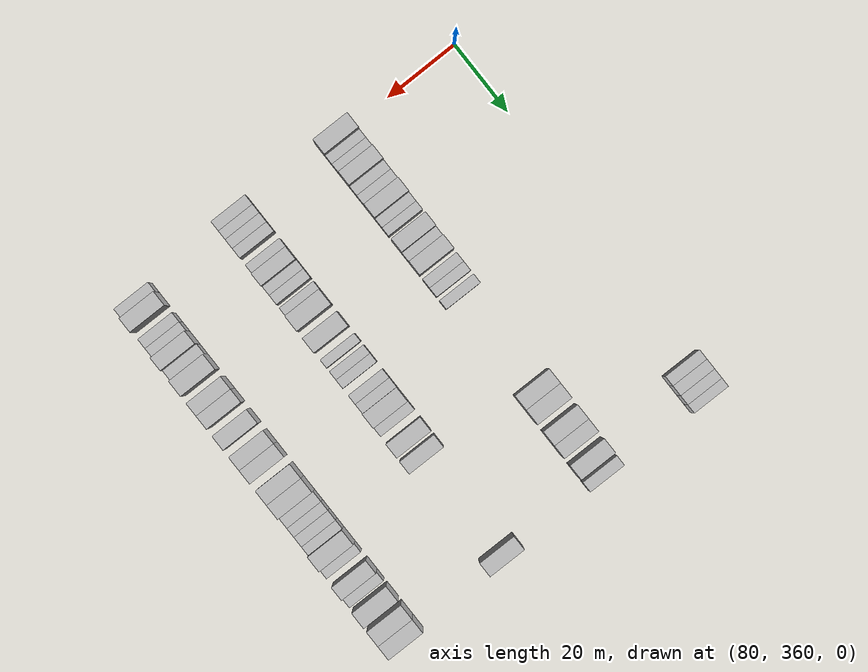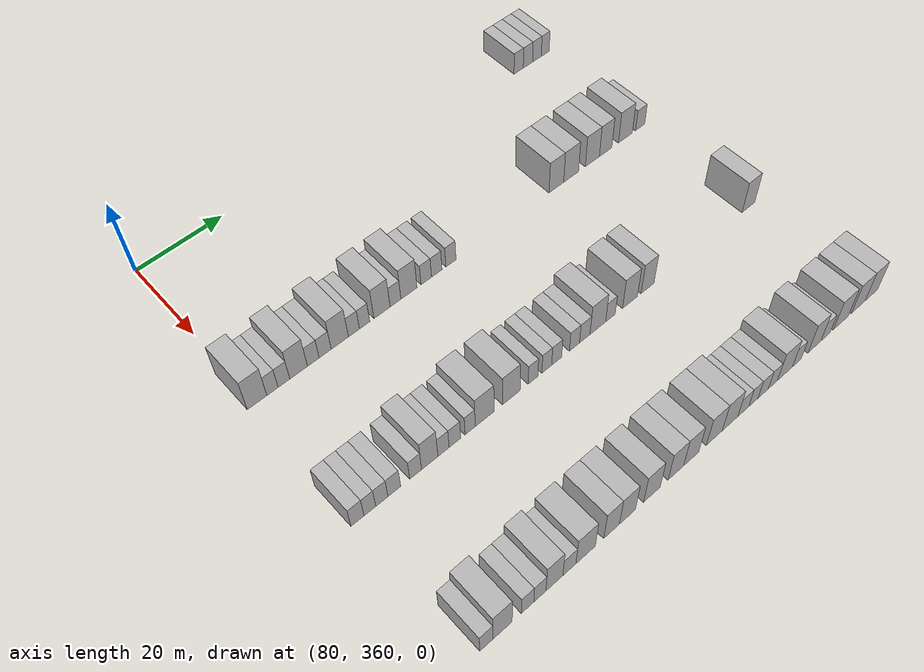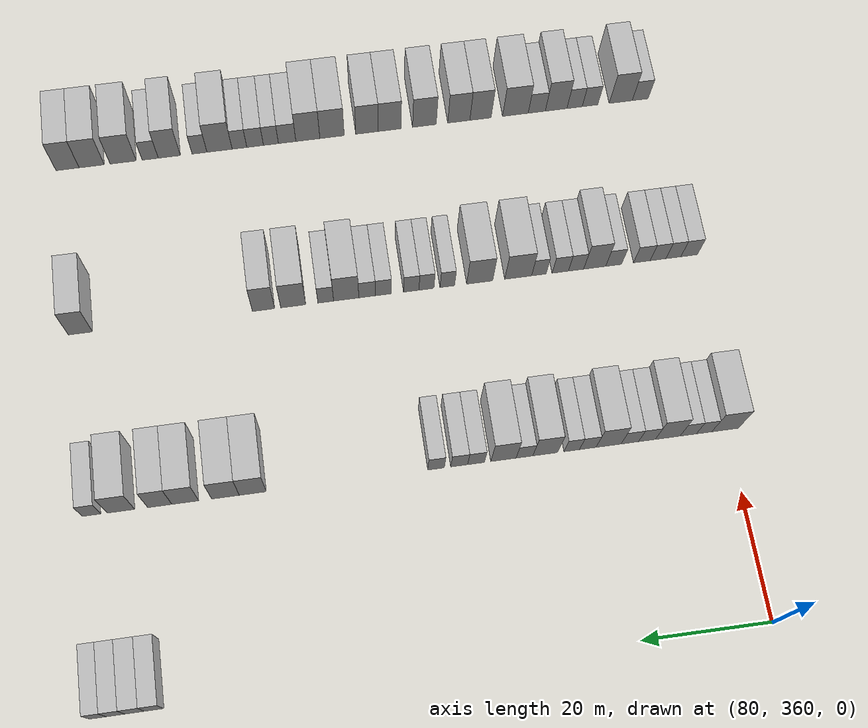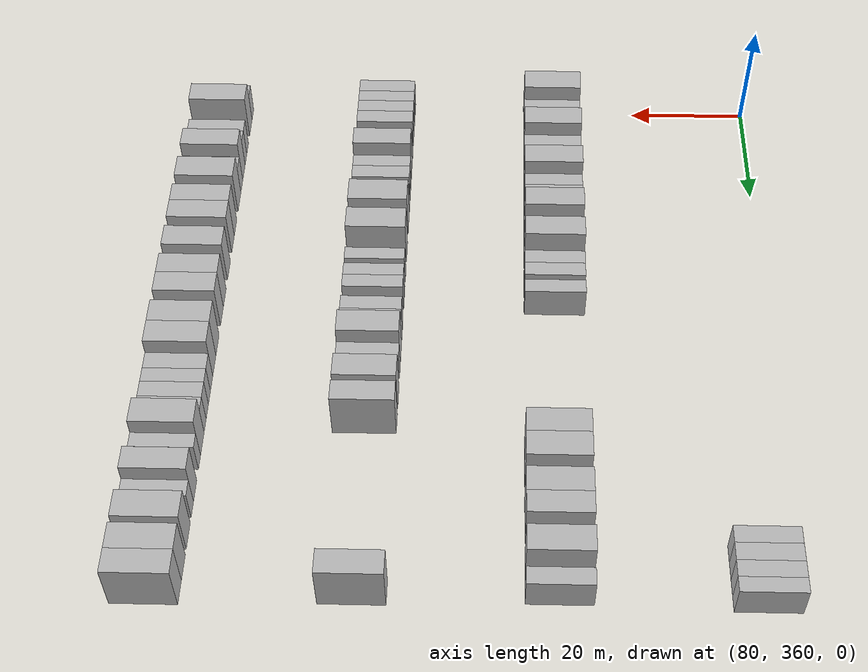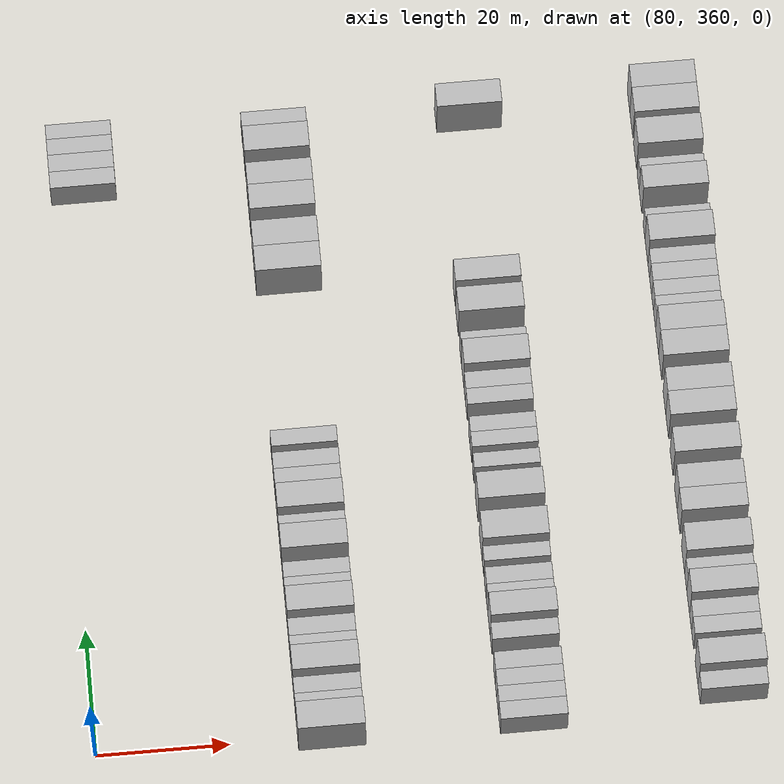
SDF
<sdf version="1.6">
 <world name="default">
  <model name="building_671">
   <static>1</static>
   <pose>85.0000 452.0973 0 0.000000 0.000000 0.000000</pose>
   <link name="link">
    <pose>0 0 3.00 0 0 0</pose>
    <collision name="collision"><geometry><box><size>10.0000 2.7850 6.0000</size></box></geometry></collision>
    <visual name="visual">
     <cast_shadows>0</cast_shadows>
     <geometry><box><size>10.0000 2.7850 6.0000</size></box></geometry>
     <material>
      <script>
       <uri>model://HANNAS_wall/materials/scripts</uri>
       <uri>model://HANNAS_wall/materials/textures</uri>
       <name>vrc/HANNAS_wall</name>
      </script>
     </material>
    </visual>
   </link>
  </model>
  <model name="building_672">
   <static>1</static>
   <pose>85.0000 454.9210 0 0.000000 0.000000 0.000000</pose>
   <link name="link">
    <pose>0 0 3.00 0 0 0</pose>
    <collision name="collision"><geometry><box><size>10.0000 2.8624 6.0000</size></box></geometry></collision>
    <visual name="visual">
     <cast_shadows>0</cast_shadows>
     <geometry><box><size>10.0000 2.8624 6.0000</size></box></geometry>
     <material>
      <script>
       <uri>model://HANNAS_wall/materials/scripts</uri>
       <uri>model://HANNAS_wall/materials/textures</uri>
       <name>vrc/HANNAS_wall</name>
      </script>
     </material>
    </visual>
   </link>
  </model>
  <model name="building_673">
   <static>1</static>
   <pose>85.0000 457.6972 0 0.000000 0.000000 0.000000</pose>
   <link name="link">
    <pose>0 0 3.00 0 0 0</pose>
    <collision name="collision"><geometry><box><size>10.0000 2.6900 6.0000</size></box></geometry></collision>
    <visual name="visual">
     <cast_shadows>0</cast_shadows>
     <geometry><box><size>10.0000 2.6900 6.0000</size></box></geometry>
     <material>
      <script>
       <uri>model://HANNAS_wall/materials/scripts</uri>
       <uri>model://HANNAS_wall/materials/textures</uri>
       <name>vrc/HANNAS_wall</name>
      </script>
     </material>
    </visual>
   </link>
  </model>
  <model name="building_674">
   <static>1</static>
   <pose>85.0000 460.2650 0 0.000000 0.000000 0.000000</pose>
   <link name="link">
    <pose>0 0 3.00 0 0 0</pose>
    <collision name="collision"><geometry><box><size>10.0000 2.4455 6.0000</size></box></geometry></collision>
    <visual name="visual">
     <cast_shadows>0</cast_shadows>
     <geometry><box><size>10.0000 2.4455 6.0000</size></box></geometry>
     <material>
      <script>
       <uri>model://HANNAS_wall/materials/scripts</uri>
       <uri>model://HANNAS_wall/materials/textures</uri>
       <name>vrc/HANNAS_wall</name>
      </script>
     </material>
    </visual>
   </link>
  </model>
  <model name="building_886">
   <static>1</static>
   <pose>115.0000 360.2453 0 0.000000 0.000000 0.000000</pose>
   <link name="link">
    <pose>0 0 4.50 0 0 0</pose>
    <collision name="collision"><geometry><box><size>10.0000 4.2825 9.0000</size></box></geometry></collision>
    <visual name="visual">
     <cast_shadows>0</cast_shadows>
     <geometry><box><size>10.0000 4.2825 9.0000</size></box></geometry>
     <material>
      <script>
       <uri>model://HANNAS_wall/materials/scripts</uri>
       <uri>model://HANNAS_wall/materials/textures</uri>
       <name>vrc/HANNAS_wall</name>
      </script>
     </material>
    </visual>
   </link>
  </model>
  <model name="building_887">
   <static>1</static>
   <pose>115.0000 363.6240 0 0.000000 0.000000 0.000000</pose>
   <link name="link">
    <pose>0 0 3.00 0 0 0</pose>
    <collision name="collision"><geometry><box><size>10.0000 2.4748 6.0000</size></box></geometry></collision>
    <visual name="visual">
     <cast_shadows>0</cast_shadows>
     <geometry><box><size>10.0000 2.4748 6.0000</size></box></geometry>
     <material>
      <script>
       <uri>model://HANNAS_wall/materials/scripts</uri>
       <uri>model://HANNAS_wall/materials/textures</uri>
       <name>vrc/HANNAS_wall</name>
      </script>
     </material>
    </visual>
   </link>
  </model>
  <model name="building_888">
   <static>1</static>
   <pose>115.0000 366.1594 0 0.000000 0.000000 0.000000</pose>
   <link name="link">
    <pose>0 0 3.00 0 0 0</pose>
    <collision name="collision"><geometry><box><size>10.0000 2.5960 6.0000</size></box></geometry></collision>
    <visual name="visual">
     <cast_shadows>0</cast_shadows>
     <geometry><box><size>10.0000 2.5960 6.0000</size></box></geometry>
     <material>
      <script>
       <uri>model://HANNAS_wall/materials/scripts</uri>
       <uri>model://HANNAS_wall/materials/textures</uri>
       <name>vrc/HANNAS_wall</name>
      </script>
     </material>
    </visual>
   </link>
  </model>
  <model name="building_889">
   <static>1</static>
   <pose>115.0000 369.4387 0 0.000000 0.000000 0.000000</pose>
   <link name="link">
    <pose>0 0 4.50 0 0 0</pose>
    <collision name="collision"><geometry><box><size>10.0000 3.9627 9.0000</size></box></geometry></collision>
    <visual name="visual">
     <cast_shadows>0</cast_shadows>
     <geometry><box><size>10.0000 3.9627 9.0000</size></box></geometry>
     <material>
      <script>
       <uri>model://HANNAS_wall/materials/scripts</uri>
       <uri>model://HANNAS_wall/materials/textures</uri>
       <name>vrc/HANNAS_wall</name>
      </script>
     </material>
    </visual>
   </link>
  </model>
  <model name="building_890">
   <static>1</static>
   <pose>115.0000 372.7577 0 0.000000 0.000000 0.000000</pose>
   <link name="link">
    <pose>0 0 3.00 0 0 0</pose>
    <collision name="collision"><geometry><box><size>10.0000 2.6752 6.0000</size></box></geometry></collision>
    <visual name="visual">
     <cast_shadows>0</cast_shadows>
     <geometry><box><size>10.0000 2.6752 6.0000</size></box></geometry>
     <material>
      <script>
       <uri>model://HANNAS_wall/materials/scripts</uri>
       <uri>model://HANNAS_wall/materials/textures</uri>
       <name>vrc/HANNAS_wall</name>
      </script>
     </material>
    </visual>
   </link>
  </model>
  <model name="building_891">
   <static>1</static>
   <pose>115.0000 375.4882 0 0.000000 0.000000 0.000000</pose>
   <link name="link">
    <pose>0 0 3.00 0 0 0</pose>
    <collision name="collision"><geometry><box><size>10.0000 2.7859 6.0000</size></box></geometry></collision>
    <visual name="visual">
     <cast_shadows>0</cast_shadows>
     <geometry><box><size>10.0000 2.7859 6.0000</size></box></geometry>
     <material>
      <script>
       <uri>model://HANNAS_wall/materials/scripts</uri>
       <uri>model://HANNAS_wall/materials/textures</uri>
       <name>vrc/HANNAS_wall</name>
      </script>
     </material>
    </visual>
   </link>
  </model>
  <model name="building_892">
   <static>1</static>
   <pose>115.0000 378.8777 0 0.000000 0.000000 0.000000</pose>
   <link name="link">
    <pose>0 0 4.50 0 0 0</pose>
    <collision name="collision"><geometry><box><size>10.0000 3.9932 9.0000</size></box></geometry></collision>
    <visual name="visual">
     <cast_shadows>0</cast_shadows>
     <geometry><box><size>10.0000 3.9932 9.0000</size></box></geometry>
     <material>
      <script>
       <uri>model://HANNAS_wall/materials/scripts</uri>
       <uri>model://HANNAS_wall/materials/textures</uri>
       <name>vrc/HANNAS_wall</name>
      </script>
     </material>
    </visual>
   </link>
  </model>
  <model name="building_893">
   <static>1</static>
   <pose>115.0000 382.1831 0 0.000000 0.000000 0.000000</pose>
   <link name="link">
    <pose>0 0 3.00 0 0 0</pose>
    <collision name="collision"><geometry><box><size>10.0000 2.6175 6.0000</size></box></geometry></collision>
    <visual name="visual">
     <cast_shadows>0</cast_shadows>
     <geometry><box><size>10.0000 2.6175 6.0000</size></box></geometry>
     <material>
      <script>
       <uri>model://HANNAS_wall/materials/scripts</uri>
       <uri>model://HANNAS_wall/materials/textures</uri>
       <name>vrc/HANNAS_wall</name>
      </script>
     </material>
    </visual>
   </link>
  </model>
  <model name="building_894">
   <static>1</static>
   <pose>115.0000 384.7175 0 0.000000 0.000000 0.000000</pose>
   <link name="link">
    <pose>0 0 3.00 0 0 0</pose>
    <collision name="collision"><geometry><box><size>10.0000 2.4513 6.0000</size></box></geometry></collision>
    <visual name="visual">
     <cast_shadows>0</cast_shadows>
     <geometry><box><size>10.0000 2.4513 6.0000</size></box></geometry>
     <material>
      <script>
       <uri>model://HANNAS_wall/materials/scripts</uri>
       <uri>model://HANNAS_wall/materials/textures</uri>
       <name>vrc/HANNAS_wall</name>
      </script>
     </material>
    </visual>
   </link>
  </model>
  <model name="building_895">
   <static>1</static>
   <pose>115.0000 388.9108 0 0.000000 0.000000 0.000000</pose>
   <link name="link">
    <pose>0 0 4.50 0 0 0</pose>
    <collision name="collision"><geometry><box><size>10.0000 3.9353 9.0000</size></box></geometry></collision>
    <visual name="visual">
     <cast_shadows>0</cast_shadows>
     <geometry><box><size>10.0000 3.9353 9.0000</size></box></geometry>
     <material>
      <script>
       <uri>model://HANNAS_wall/materials/scripts</uri>
       <uri>model://HANNAS_wall/materials/textures</uri>
       <name>vrc/HANNAS_wall</name>
      </script>
     </material>
    </visual>
   </link>
  </model>
  <model name="building_896">
   <static>1</static>
   <pose>115.0000 392.2031 0 0.000000 0.000000 0.000000</pose>
   <link name="link">
    <pose>0 0 3.00 0 0 0</pose>
    <collision name="collision"><geometry><box><size>10.0000 2.6492 6.0000</size></box></geometry></collision>
    <visual name="visual">
     <cast_shadows>0</cast_shadows>
     <geometry><box><size>10.0000 2.6492 6.0000</size></box></geometry>
     <material>
      <script>
       <uri>model://HANNAS_wall/materials/scripts</uri>
       <uri>model://HANNAS_wall/materials/textures</uri>
       <name>vrc/HANNAS_wall</name>
      </script>
     </material>
    </visual>
   </link>
  </model>
  <model name="building_897">
   <static>1</static>
   <pose>115.0000 395.5239 0 0.000000 0.000000 0.000000</pose>
   <link name="link">
    <pose>0 0 4.50 0 0 0</pose>
    <collision name="collision"><geometry><box><size>10.0000 3.9924 9.0000</size></box></geometry></collision>
    <visual name="visual">
     <cast_shadows>0</cast_shadows>
     <geometry><box><size>10.0000 3.9924 9.0000</size></box></geometry>
     <material>
      <script>
       <uri>model://HANNAS_wall/materials/scripts</uri>
       <uri>model://HANNAS_wall/materials/textures</uri>
       <name>vrc/HANNAS_wall</name>
      </script>
     </material>
    </visual>
   </link>
  </model>
  <model name="building_898">
   <static>1</static>
   <pose>115.0000 399.8408 0 0.000000 0.000000 0.000000</pose>
   <link name="link">
    <pose>0 0 3.00 0 0 0</pose>
    <collision name="collision"><geometry><box><size>10.0000 2.6413 6.0000</size></box></geometry></collision>
    <visual name="visual">
     <cast_shadows>0</cast_shadows>
     <geometry><box><size>10.0000 2.6413 6.0000</size></box></geometry>
     <material>
      <script>
       <uri>model://HANNAS_wall/materials/scripts</uri>
       <uri>model://HANNAS_wall/materials/textures</uri>
       <name>vrc/HANNAS_wall</name>
      </script>
     </material>
    </visual>
   </link>
  </model>
  <model name="building_899">
   <static>1</static>
   <pose>115.0000 402.4907 0 0.000000 0.000000 0.000000</pose>
   <link name="link">
    <pose>0 0 3.00 0 0 0</pose>
    <collision name="collision"><geometry><box><size>10.0000 2.6586 6.0000</size></box></geometry></collision>
    <visual name="visual">
     <cast_shadows>0</cast_shadows>
     <geometry><box><size>10.0000 2.6586 6.0000</size></box></geometry>
     <material>
      <script>
       <uri>model://HANNAS_wall/materials/scripts</uri>
       <uri>model://HANNAS_wall/materials/textures</uri>
       <name>vrc/HANNAS_wall</name>
      </script>
     </material>
    </visual>
   </link>
  </model>
  <model name="building_900">
   <static>1</static>
   <pose>115.0000 406.1226 0 0.000000 0.000000 0.000000</pose>
   <link name="link">
    <pose>0 0 3.00 0 0 0</pose>
    <collision name="collision"><geometry><box><size>10.0000 2.6052 6.0000</size></box></geometry></collision>
    <visual name="visual">
     <cast_shadows>0</cast_shadows>
     <geometry><box><size>10.0000 2.6052 6.0000</size></box></geometry>
     <material>
      <script>
       <uri>model://HANNAS_wall/materials/scripts</uri>
       <uri>model://HANNAS_wall/materials/textures</uri>
       <name>vrc/HANNAS_wall</name>
      </script>
     </material>
    </visual>
   </link>
  </model>
  <model name="building_901">
   <static>1</static>
   <pose>115.0000 434.6788 0 0.000000 0.000000 0.000000</pose>
   <link name="link">
    <pose>0 0 4.50 0 0 0</pose>
    <collision name="collision"><geometry><box><size>10.0000 4.1690 9.0000</size></box></geometry></collision>
    <visual name="visual">
     <cast_shadows>0</cast_shadows>
     <geometry><box><size>10.0000 4.1690 9.0000</size></box></geometry>
     <material>
      <script>
       <uri>model://HANNAS_wall/materials/scripts</uri>
       <uri>model://HANNAS_wall/materials/textures</uri>
       <name>vrc/HANNAS_wall</name>
      </script>
     </material>
    </visual>
   </link>
  </model>
  <model name="building_902">
   <static>1</static>
   <pose>115.0000 438.9005 0 0.000000 0.000000 0.000000</pose>
   <link name="link">
    <pose>0 0 4.50 0 0 0</pose>
    <collision name="collision"><geometry><box><size>10.0000 4.2745 9.0000</size></box></geometry></collision>
    <visual name="visual">
     <cast_shadows>0</cast_shadows>
     <geometry><box><size>10.0000 4.2745 9.0000</size></box></geometry>
     <material>
      <script>
       <uri>model://HANNAS_wall/materials/scripts</uri>
       <uri>model://HANNAS_wall/materials/textures</uri>
       <name>vrc/HANNAS_wall</name>
      </script>
     </material>
    </visual>
   </link>
  </model>
  <model name="building_903">
   <static>1</static>
   <pose>115.0000 445.1015 0 0.000000 0.000000 0.000000</pose>
   <link name="link">
    <pose>0 0 4.50 0 0 0</pose>
    <collision name="collision"><geometry><box><size>10.0000 4.1275 9.0000</size></box></geometry></collision>
    <visual name="visual">
     <cast_shadows>0</cast_shadows>
     <geometry><box><size>10.0000 4.1275 9.0000</size></box></geometry>
     <material>
      <script>
       <uri>model://HANNAS_wall/materials/scripts</uri>
       <uri>model://HANNAS_wall/materials/textures</uri>
       <name>vrc/HANNAS_wall</name>
      </script>
     </material>
    </visual>
   </link>
  </model>
  <model name="building_904">
   <static>1</static>
   <pose>115.0000 449.0201 0 0.000000 0.000000 0.000000</pose>
   <link name="link">
    <pose>0 0 4.50 0 0 0</pose>
    <collision name="collision"><geometry><box><size>10.0000 3.7096 9.0000</size></box></geometry></collision>
    <visual name="visual">
     <cast_shadows>0</cast_shadows>
     <geometry><box><size>10.0000 3.7096 9.0000</size></box></geometry>
     <material>
      <script>
       <uri>model://HANNAS_wall/materials/scripts</uri>
       <uri>model://HANNAS_wall/materials/textures</uri>
       <name>vrc/HANNAS_wall</name>
      </script>
     </material>
    </visual>
   </link>
  </model>
  <model name="building_905">
   <static>1</static>
   <pose>115.0000 454.9854 0 0.000000 0.000000 0.000000</pose>
   <link name="link">
    <pose>0 0 4.50 0 0 0</pose>
    <collision name="collision"><geometry><box><size>10.0000 4.2211 9.0000</size></box></geometry></collision>
    <visual name="visual">
     <cast_shadows>0</cast_shadows>
     <geometry><box><size>10.0000 4.2211 9.0000</size></box></geometry>
     <material>
      <script>
       <uri>model://HANNAS_wall/materials/scripts</uri>
       <uri>model://HANNAS_wall/materials/textures</uri>
       <name>vrc/HANNAS_wall</name>
      </script>
     </material>
    </visual>
   </link>
  </model>
  <model name="building_906">
   <static>1</static>
   <pose>115.0000 459.5054 0 0.000000 0.000000 0.000000</pose>
   <link name="link">
    <pose>0 0 3.00 0 0 0</pose>
    <collision name="collision"><geometry><box><size>10.0000 2.8191 6.0000</size></box></geometry></collision>
    <visual name="visual">
     <cast_shadows>0</cast_shadows>
     <geometry><box><size>10.0000 2.8191 6.0000</size></box></geometry>
     <material>
      <script>
       <uri>model://HANNAS_wall/materials/scripts</uri>
       <uri>model://HANNAS_wall/materials/textures</uri>
       <name>vrc/HANNAS_wall</name>
      </script>
     </material>
    </visual>
   </link>
  </model>
  <model name="building_1112">
   <static>1</static>
   <pose>145.0000 359.3754 0 0.000000 0.000000 0.000000</pose>
   <link name="link">
    <pose>0 0 3.00 0 0 0</pose>
    <collision name="collision"><geometry><box><size>10.0000 2.7816 6.0000</size></box></geometry></collision>
    <visual name="visual">
     <cast_shadows>0</cast_shadows>
     <geometry><box><size>10.0000 2.7816 6.0000</size></box></geometry>
     <material>
      <script>
       <uri>model://HANNAS_wall/materials/scripts</uri>
       <uri>model://HANNAS_wall/materials/textures</uri>
       <name>vrc/HANNAS_wall</name>
      </script>
     </material>
    </visual>
   </link>
  </model>
  <model name="building_1113">
   <static>1</static>
   <pose>145.0000 362.0252 0 0.000000 0.000000 0.000000</pose>
   <link name="link">
    <pose>0 0 3.00 0 0 0</pose>
    <collision name="collision"><geometry><box><size>10.0000 2.5179 6.0000</size></box></geometry></collision>
    <visual name="visual">
     <cast_shadows>0</cast_shadows>
     <geometry><box><size>10.0000 2.5179 6.0000</size></box></geometry>
     <material>
      <script>
       <uri>model://HANNAS_wall/materials/scripts</uri>
       <uri>model://HANNAS_wall/materials/textures</uri>
       <name>vrc/HANNAS_wall</name>
      </script>
     </material>
    </visual>
   </link>
  </model>
  <model name="building_1114">
   <static>1</static>
   <pose>145.0000 364.6035 0 0.000000 0.000000 0.000000</pose>
   <link name="link">
    <pose>0 0 3.00 0 0 0</pose>
    <collision name="collision"><geometry><box><size>10.0000 2.6387 6.0000</size></box></geometry></collision>
    <visual name="visual">
     <cast_shadows>0</cast_shadows>
     <geometry><box><size>10.0000 2.6387 6.0000</size></box></geometry>
     <material>
      <script>
       <uri>model://HANNAS_wall/materials/scripts</uri>
       <uri>model://HANNAS_wall/materials/textures</uri>
       <name>vrc/HANNAS_wall</name>
      </script>
     </material>
    </visual>
   </link>
  </model>
  <model name="building_1115">
   <static>1</static>
   <pose>145.0000 367.3223 0 0.000000 0.000000 0.000000</pose>
   <link name="link">
    <pose>0 0 3.00 0 0 0</pose>
    <collision name="collision"><geometry><box><size>10.0000 2.7990 6.0000</size></box></geometry></collision>
    <visual name="visual">
     <cast_shadows>0</cast_shadows>
     <geometry><box><size>10.0000 2.7990 6.0000</size></box></geometry>
     <material>
      <script>
       <uri>model://HANNAS_wall/materials/scripts</uri>
       <uri>model://HANNAS_wall/materials/textures</uri>
       <name>vrc/HANNAS_wall</name>
      </script>
     </material>
    </visual>
   </link>
  </model>
  <model name="building_1116">
   <static>1</static>
   <pose>145.0000 372.0495 0 0.000000 0.000000 0.000000</pose>
   <link name="link">
    <pose>0 0 3.00 0 0 0</pose>
    <collision name="collision"><geometry><box><size>10.0000 2.6555 6.0000</size></box></geometry></collision>
    <visual name="visual">
     <cast_shadows>0</cast_shadows>
     <geometry><box><size>10.0000 2.6555 6.0000</size></box></geometry>
     <material>
      <script>
       <uri>model://HANNAS_wall/materials/scripts</uri>
       <uri>model://HANNAS_wall/materials/textures</uri>
       <name>vrc/HANNAS_wall</name>
      </script>
     </material>
    </visual>
   </link>
  </model>
  <model name="building_1117">
   <static>1</static>
   <pose>145.0000 375.2213 0 0.000000 0.000000 0.000000</pose>
   <link name="link">
    <pose>0 0 4.50 0 0 0</pose>
    <collision name="collision"><geometry><box><size>10.0000 3.6882 9.0000</size></box></geometry></collision>
    <visual name="visual">
     <cast_shadows>0</cast_shadows>
     <geometry><box><size>10.0000 3.6882 9.0000</size></box></geometry>
     <material>
      <script>
       <uri>model://HANNAS_wall/materials/scripts</uri>
       <uri>model://HANNAS_wall/materials/textures</uri>
       <name>vrc/HANNAS_wall</name>
      </script>
     </material>
    </visual>
   </link>
  </model>
  <model name="building_1118">
   <static>1</static>
   <pose>145.0000 378.3426 0 0.000000 0.000000 0.000000</pose>
   <link name="link">
    <pose>0 0 3.00 0 0 0</pose>
    <collision name="collision"><geometry><box><size>10.0000 2.5543 6.0000</size></box></geometry></collision>
    <visual name="visual">
     <cast_shadows>0</cast_shadows>
     <geometry><box><size>10.0000 2.5543 6.0000</size></box></geometry>
     <material>
      <script>
       <uri>model://HANNAS_wall/materials/scripts</uri>
       <uri>model://HANNAS_wall/materials/textures</uri>
       <name>vrc/HANNAS_wall</name>
      </script>
     </material>
    </visual>
   </link>
  </model>
  <model name="building_1119">
   <static>1</static>
   <pose>145.0000 380.9767 0 0.000000 0.000000 0.000000</pose>
   <link name="link">
    <pose>0 0 3.00 0 0 0</pose>
    <collision name="collision"><geometry><box><size>10.0000 2.7140 6.0000</size></box></geometry></collision>
    <visual name="visual">
     <cast_shadows>0</cast_shadows>
     <geometry><box><size>10.0000 2.7140 6.0000</size></box></geometry>
     <material>
      <script>
       <uri>model://HANNAS_wall/materials/scripts</uri>
       <uri>model://HANNAS_wall/materials/textures</uri>
       <name>vrc/HANNAS_wall</name>
      </script>
     </material>
    </visual>
   </link>
  </model>
  <model name="building_1120">
   <static>1</static>
   <pose>145.0000 384.5342 0 0.000000 0.000000 0.000000</pose>
   <link name="link">
    <pose>0 0 3.00 0 0 0</pose>
    <collision name="collision"><geometry><box><size>10.0000 2.4010 6.0000</size></box></geometry></collision>
    <visual name="visual">
     <cast_shadows>0</cast_shadows>
     <geometry><box><size>10.0000 2.4010 6.0000</size></box></geometry>
     <material>
      <script>
       <uri>model://HANNAS_wall/materials/scripts</uri>
       <uri>model://HANNAS_wall/materials/textures</uri>
       <name>vrc/HANNAS_wall</name>
      </script>
     </material>
    </visual>
   </link>
  </model>
  <model name="building_1121">
   <static>1</static>
   <pose>145.0000 387.9773 0 0.000000 0.000000 0.000000</pose>
   <link name="link">
    <pose>0 0 4.50 0 0 0</pose>
    <collision name="collision"><geometry><box><size>10.0000 4.4851 9.0000</size></box></geometry></collision>
    <visual name="visual">
     <cast_shadows>0</cast_shadows>
     <geometry><box><size>10.0000 4.4851 9.0000</size></box></geometry>
     <material>
      <script>
       <uri>model://HANNAS_wall/materials/scripts</uri>
       <uri>model://HANNAS_wall/materials/textures</uri>
       <name>vrc/HANNAS_wall</name>
      </script>
     </material>
    </visual>
   </link>
  </model>
  <model name="building_1122">
   <static>1</static>
   <pose>145.0000 394.3722 0 0.000000 0.000000 0.000000</pose>
   <link name="link">
    <pose>0 0 4.50 0 0 0</pose>
    <collision name="collision"><geometry><box><size>10.0000 4.3046 9.0000</size></box></geometry></collision>
    <visual name="visual">
     <cast_shadows>0</cast_shadows>
     <geometry><box><size>10.0000 4.3046 9.0000</size></box></geometry>
     <material>
      <script>
       <uri>model://HANNAS_wall/materials/scripts</uri>
       <uri>model://HANNAS_wall/materials/textures</uri>
       <name>vrc/HANNAS_wall</name>
      </script>
     </material>
    </visual>
   </link>
  </model>
  <model name="building_1123">
   <static>1</static>
   <pose>145.0000 399.7343 0 0.000000 0.000000 0.000000</pose>
   <link name="link">
    <pose>0 0 3.00 0 0 0</pose>
    <collision name="collision"><geometry><box><size>10.0000 2.4195 6.0000</size></box></geometry></collision>
    <visual name="visual">
     <cast_shadows>0</cast_shadows>
     <geometry><box><size>10.0000 2.4195 6.0000</size></box></geometry>
     <material>
      <script>
       <uri>model://HANNAS_wall/materials/scripts</uri>
       <uri>model://HANNAS_wall/materials/textures</uri>
       <name>vrc/HANNAS_wall</name>
      </script>
     </material>
    </visual>
   </link>
  </model>
  <model name="building_1124">
   <static>1</static>
   <pose>145.0000 403.1805 0 0.000000 0.000000 0.000000</pose>
   <link name="link">
    <pose>0 0 3.00 0 0 0</pose>
    <collision name="collision"><geometry><box><size>10.0000 2.4729 6.0000</size></box></geometry></collision>
    <visual name="visual">
     <cast_shadows>0</cast_shadows>
     <geometry><box><size>10.0000 2.4729 6.0000</size></box></geometry>
     <material>
      <script>
       <uri>model://HANNAS_wall/materials/scripts</uri>
       <uri>model://HANNAS_wall/materials/textures</uri>
       <name>vrc/HANNAS_wall</name>
      </script>
     </material>
    </visual>
   </link>
  </model>
  <model name="building_1125">
   <static>1</static>
   <pose>145.0000 405.6865 0 0.000000 0.000000 0.000000</pose>
   <link name="link">
    <pose>0 0 3.00 0 0 0</pose>
    <collision name="collision"><geometry><box><size>10.0000 2.5390 6.0000</size></box></geometry></collision>
    <visual name="visual">
     <cast_shadows>0</cast_shadows>
     <geometry><box><size>10.0000 2.5390 6.0000</size></box></geometry>
     <material>
      <script>
       <uri>model://HANNAS_wall/materials/scripts</uri>
       <uri>model://HANNAS_wall/materials/textures</uri>
       <name>vrc/HANNAS_wall</name>
      </script>
     </material>
    </visual>
   </link>
  </model>
  <model name="building_1126">
   <static>1</static>
   <pose>145.0000 410.2626 0 0.000000 0.000000 0.000000</pose>
   <link name="link">
    <pose>0 0 3.00 0 0 0</pose>
    <collision name="collision"><geometry><box><size>10.0000 2.6132 6.0000</size></box></geometry></collision>
    <visual name="visual">
     <cast_shadows>0</cast_shadows>
     <geometry><box><size>10.0000 2.6132 6.0000</size></box></geometry>
     <material>
      <script>
       <uri>model://HANNAS_wall/materials/scripts</uri>
       <uri>model://HANNAS_wall/materials/textures</uri>
       <name>vrc/HANNAS_wall</name>
      </script>
     </material>
    </visual>
   </link>
  </model>
  <model name="building_1127">
   <static>1</static>
   <pose>145.0000 412.9408 0 0.000000 0.000000 0.000000</pose>
   <link name="link">
    <pose>0 0 3.00 0 0 0</pose>
    <collision name="collision"><geometry><box><size>10.0000 2.7433 6.0000</size></box></geometry></collision>
    <visual name="visual">
     <cast_shadows>0</cast_shadows>
     <geometry><box><size>10.0000 2.7433 6.0000</size></box></geometry>
     <material>
      <script>
       <uri>model://HANNAS_wall/materials/scripts</uri>
       <uri>model://HANNAS_wall/materials/textures</uri>
       <name>vrc/HANNAS_wall</name>
      </script>
     </material>
    </visual>
   </link>
  </model>
  <model name="building_1128">
   <static>1</static>
   <pose>145.0000 416.3819 0 0.000000 0.000000 0.000000</pose>
   <link name="link">
    <pose>0 0 4.50 0 0 0</pose>
    <collision name="collision"><geometry><box><size>10.0000 4.1389 9.0000</size></box></geometry></collision>
    <visual name="visual">
     <cast_shadows>0</cast_shadows>
     <geometry><box><size>10.0000 4.1389 9.0000</size></box></geometry>
     <material>
      <script>
       <uri>model://HANNAS_wall/materials/scripts</uri>
       <uri>model://HANNAS_wall/materials/textures</uri>
       <name>vrc/HANNAS_wall</name>
      </script>
     </material>
    </visual>
   </link>
  </model>
  <model name="building_1129">
   <static>1</static>
   <pose>145.0000 419.7355 0 0.000000 0.000000 0.000000</pose>
   <link name="link">
    <pose>0 0 3.00 0 0 0</pose>
    <collision name="collision"><geometry><box><size>10.0000 2.5682 6.0000</size></box></geometry></collision>
    <visual name="visual">
     <cast_shadows>0</cast_shadows>
     <geometry><box><size>10.0000 2.5682 6.0000</size></box></geometry>
     <material>
      <script>
       <uri>model://HANNAS_wall/materials/scripts</uri>
       <uri>model://HANNAS_wall/materials/textures</uri>
       <name>vrc/HANNAS_wall</name>
      </script>
     </material>
    </visual>
   </link>
  </model>
  <model name="building_1130">
   <static>1</static>
   <pose>145.0000 425.0594 0 0.000000 0.000000 0.000000</pose>
   <link name="link">
    <pose>0 0 4.50 0 0 0</pose>
    <collision name="collision"><geometry><box><size>10.0000 4.0796 9.0000</size></box></geometry></collision>
    <visual name="visual">
     <cast_shadows>0</cast_shadows>
     <geometry><box><size>10.0000 4.0796 9.0000</size></box></geometry>
     <material>
      <script>
       <uri>model://HANNAS_wall/materials/scripts</uri>
       <uri>model://HANNAS_wall/materials/textures</uri>
       <name>vrc/HANNAS_wall</name>
      </script>
     </material>
    </visual>
   </link>
  </model>
  <model name="building_1131">
   <static>1</static>
   <pose>145.0000 429.9063 0 0.000000 0.000000 0.000000</pose>
   <link name="link">
    <pose>0 0 4.50 0 0 0</pose>
    <collision name="collision"><geometry><box><size>10.0000 3.6142 9.0000</size></box></geometry></collision>
    <visual name="visual">
     <cast_shadows>0</cast_shadows>
     <geometry><box><size>10.0000 3.6142 9.0000</size></box></geometry>
     <material>
      <script>
       <uri>model://HANNAS_wall/materials/scripts</uri>
       <uri>model://HANNAS_wall/materials/textures</uri>
       <name>vrc/HANNAS_wall</name>
      </script>
     </material>
    </visual>
   </link>
  </model>
  <model name="building_1132">
   <static>1</static>
   <pose>145.0000 459.5725 0 0.000000 0.000000 0.000000</pose>
   <link name="link">
    <pose>0 0 4.50 0 0 0</pose>
    <collision name="collision"><geometry><box><size>10.0000 3.9061 9.0000</size></box></geometry></collision>
    <visual name="visual">
     <cast_shadows>0</cast_shadows>
     <geometry><box><size>10.0000 3.9061 9.0000</size></box></geometry>
     <material>
      <script>
       <uri>model://HANNAS_wall/materials/scripts</uri>
       <uri>model://HANNAS_wall/materials/textures</uri>
       <name>vrc/HANNAS_wall</name>
      </script>
     </material>
    </visual>
   </link>
  </model>
  <model name="building_1337">
   <static>1</static>
   <pose>175.0000 361.3487 0 0.000000 0.000000 0.000000</pose>
   <link name="link">
    <pose>0 0 3.00 0 0 0</pose>
    <collision name="collision"><geometry><box><size>10.0000 2.7989 6.0000</size></box></geometry></collision>
    <visual name="visual">
     <cast_shadows>0</cast_shadows>
     <geometry><box><size>10.0000 2.7989 6.0000</size></box></geometry>
     <material>
      <script>
       <uri>model://HANNAS_wall/materials/scripts</uri>
       <uri>model://HANNAS_wall/materials/textures</uri>
       <name>vrc/HANNAS_wall</name>
      </script>
     </material>
    </visual>
   </link>
  </model>
  <model name="building_1338">
   <static>1</static>
   <pose>175.0000 364.7821 0 0.000000 0.000000 0.000000</pose>
   <link name="link">
    <pose>0 0 4.50 0 0 0</pose>
    <collision name="collision"><geometry><box><size>10.0000 4.0678 9.0000</size></box></geometry></collision>
    <visual name="visual">
     <cast_shadows>0</cast_shadows>
     <geometry><box><size>10.0000 4.0678 9.0000</size></box></geometry>
     <material>
      <script>
       <uri>model://HANNAS_wall/materials/scripts</uri>
       <uri>model://HANNAS_wall/materials/textures</uri>
       <name>vrc/HANNAS_wall</name>
      </script>
     </material>
    </visual>
   </link>
  </model>
  <model name="building_1339">
   <static>1</static>
   <pose>175.0000 370.1795 0 0.000000 0.000000 0.000000</pose>
   <link name="link">
    <pose>0 0 3.00 0 0 0</pose>
    <collision name="collision"><geometry><box><size>10.0000 2.7270 6.0000</size></box></geometry></collision>
    <visual name="visual">
     <cast_shadows>0</cast_shadows>
     <geometry><box><size>10.0000 2.7270 6.0000</size></box></geometry>
     <material>
      <script>
       <uri>model://HANNAS_wall/materials/scripts</uri>
       <uri>model://HANNAS_wall/materials/textures</uri>
       <name>vrc/HANNAS_wall</name>
      </script>
     </material>
    </visual>
   </link>
  </model>
  <model name="building_1340">
   <static>1</static>
   <pose>175.0000 372.8846 0 0.000000 0.000000 0.000000</pose>
   <link name="link">
    <pose>0 0 3.00 0 0 0</pose>
    <collision name="collision"><geometry><box><size>10.0000 2.6833 6.0000</size></box></geometry></collision>
    <visual name="visual">
     <cast_shadows>0</cast_shadows>
     <geometry><box><size>10.0000 2.6833 6.0000</size></box></geometry>
     <material>
      <script>
       <uri>model://HANNAS_wall/materials/scripts</uri>
       <uri>model://HANNAS_wall/materials/textures</uri>
       <name>vrc/HANNAS_wall</name>
      </script>
     </material>
    </visual>
   </link>
  </model>
  <model name="building_1341">
   <static>1</static>
   <pose>175.0000 376.1200 0 0.000000 0.000000 0.000000</pose>
   <link name="link">
    <pose>0 0 4.50 0 0 0</pose>
    <collision name="collision"><geometry><box><size>10.0000 3.7873 9.0000</size></box></geometry></collision>
    <visual name="visual">
     <cast_shadows>0</cast_shadows>
     <geometry><box><size>10.0000 3.7873 9.0000</size></box></geometry>
     <material>
      <script>
       <uri>model://HANNAS_wall/materials/scripts</uri>
       <uri>model://HANNAS_wall/materials/textures</uri>
       <name>vrc/HANNAS_wall</name>
      </script>
     </material>
    </visual>
   </link>
  </model>
  <model name="building_1342">
   <static>1</static>
   <pose>175.0000 379.5078 0 0.000000 0.000000 0.000000</pose>
   <link name="link">
    <pose>0 0 3.00 0 0 0</pose>
    <collision name="collision"><geometry><box><size>10.0000 2.9882 6.0000</size></box></geometry></collision>
    <visual name="visual">
     <cast_shadows>0</cast_shadows>
     <geometry><box><size>10.0000 2.9882 6.0000</size></box></geometry>
     <material>
      <script>
       <uri>model://HANNAS_wall/materials/scripts</uri>
       <uri>model://HANNAS_wall/materials/textures</uri>
       <name>vrc/HANNAS_wall</name>
      </script>
     </material>
    </visual>
   </link>
  </model>
  <model name="building_1343">
   <static>1</static>
   <pose>175.0000 383.2411 0 0.000000 0.000000 0.000000</pose>
   <link name="link">
    <pose>0 0 4.50 0 0 0</pose>
    <collision name="collision"><geometry><box><size>10.0000 4.4785 9.0000</size></box></geometry></collision>
    <visual name="visual">
     <cast_shadows>0</cast_shadows>
     <geometry><box><size>10.0000 4.4785 9.0000</size></box></geometry>
     <material>
      <script>
       <uri>model://HANNAS_wall/materials/scripts</uri>
       <uri>model://HANNAS_wall/materials/textures</uri>
       <name>vrc/HANNAS_wall</name>
      </script>
     </material>
    </visual>
   </link>
  </model>
  <model name="building_1344">
   <static>1</static>
   <pose>175.0000 389.3269 0 0.000000 0.000000 0.000000</pose>
   <link name="link">
    <pose>0 0 4.50 0 0 0</pose>
    <collision name="collision"><geometry><box><size>10.0000 3.6932 9.0000</size></box></geometry></collision>
    <visual name="visual">
     <cast_shadows>0</cast_shadows>
     <geometry><box><size>10.0000 3.6932 9.0000</size></box></geometry>
     <material>
      <script>
       <uri>model://HANNAS_wall/materials/scripts</uri>
       <uri>model://HANNAS_wall/materials/textures</uri>
       <name>vrc/HANNAS_wall</name>
      </script>
     </material>
    </visual>
   </link>
  </model>
  <model name="building_1345">
   <static>1</static>
   <pose>175.0000 393.1017 0 0.000000 0.000000 0.000000</pose>
   <link name="link">
    <pose>0 0 4.50 0 0 0</pose>
    <collision name="collision"><geometry><box><size>10.0000 3.8563 9.0000</size></box></geometry></collision>
    <visual name="visual">
     <cast_shadows>0</cast_shadows>
     <geometry><box><size>10.0000 3.8563 9.0000</size></box></geometry>
     <material>
      <script>
       <uri>model://HANNAS_wall/materials/scripts</uri>
       <uri>model://HANNAS_wall/materials/textures</uri>
       <name>vrc/HANNAS_wall</name>
      </script>
     </material>
    </visual>
   </link>
  </model>
  <model name="building_1346">
   <static>1</static>
   <pose>175.0000 399.0793 0 0.000000 0.000000 0.000000</pose>
   <link name="link">
    <pose>0 0 4.50 0 0 0</pose>
    <collision name="collision"><geometry><box><size>10.0000 4.0990 9.0000</size></box></geometry></collision>
    <visual name="visual">
     <cast_shadows>0</cast_shadows>
     <geometry><box><size>10.0000 4.0990 9.0000</size></box></geometry>
     <material>
      <script>
       <uri>model://HANNAS_wall/materials/scripts</uri>
       <uri>model://HANNAS_wall/materials/textures</uri>
       <name>vrc/HANNAS_wall</name>
      </script>
     </material>
    </visual>
   </link>
  </model>
  <model name="building_1347">
   <static>1</static>
   <pose>175.0000 405.0910 0 0.000000 0.000000 0.000000</pose>
   <link name="link">
    <pose>0 0 4.50 0 0 0</pose>
    <collision name="collision"><geometry><box><size>10.0000 3.9245 9.0000</size></box></geometry></collision>
    <visual name="visual">
     <cast_shadows>0</cast_shadows>
     <geometry><box><size>10.0000 3.9245 9.0000</size></box></geometry>
     <material>
      <script>
       <uri>model://HANNAS_wall/materials/scripts</uri>
       <uri>model://HANNAS_wall/materials/textures</uri>
       <name>vrc/HANNAS_wall</name>
      </script>
     </material>
    </visual>
   </link>
  </model>
  <model name="building_1348">
   <static>1</static>
   <pose>175.0000 408.9955 0 0.000000 0.000000 0.000000</pose>
   <link name="link">
    <pose>0 0 4.50 0 0 0</pose>
    <collision name="collision"><geometry><box><size>10.0000 3.8844 9.0000</size></box></geometry></collision>
    <visual name="visual">
     <cast_shadows>0</cast_shadows>
     <geometry><box><size>10.0000 3.8844 9.0000</size></box></geometry>
     <material>
      <script>
       <uri>model://HANNAS_wall/materials/scripts</uri>
       <uri>model://HANNAS_wall/materials/textures</uri>
       <name>vrc/HANNAS_wall</name>
      </script>
     </material>
    </visual>
   </link>
  </model>
  <model name="building_1349">
   <static>1</static>
   <pose>175.0000 415.0298 0 0.000000 0.000000 0.000000</pose>
   <link name="link">
    <pose>0 0 4.50 0 0 0</pose>
    <collision name="collision"><geometry><box><size>10.0000 4.1841 9.0000</size></box></geometry></collision>
    <visual name="visual">
     <cast_shadows>0</cast_shadows>
     <geometry><box><size>10.0000 4.1841 9.0000</size></box></geometry>
     <material>
      <script>
       <uri>model://HANNAS_wall/materials/scripts</uri>
       <uri>model://HANNAS_wall/materials/textures</uri>
       <name>vrc/HANNAS_wall</name>
      </script>
     </material>
    </visual>
   </link>
  </model>
  <model name="building_1350">
   <static>1</static>
   <pose>175.0000 419.1845 0 0.000000 0.000000 0.000000</pose>
   <link name="link">
    <pose>0 0 4.50 0 0 0</pose>
    <collision name="collision"><geometry><box><size>10.0000 4.1253 9.0000</size></box></geometry></collision>
    <visual name="visual">
     <cast_shadows>0</cast_shadows>
     <geometry><box><size>10.0000 4.1253 9.0000</size></box></geometry>
     <material>
      <script>
       <uri>model://HANNAS_wall/materials/scripts</uri>
       <uri>model://HANNAS_wall/materials/textures</uri>
       <name>vrc/HANNAS_wall</name>
      </script>
     </material>
    </visual>
   </link>
  </model>
  <model name="building_1351">
   <static>1</static>
   <pose>175.0000 422.7423 0 0.000000 0.000000 0.000000</pose>
   <link name="link">
    <pose>0 0 3.00 0 0 0</pose>
    <collision name="collision"><geometry><box><size>10.0000 2.9903 6.0000</size></box></geometry></collision>
    <visual name="visual">
     <cast_shadows>0</cast_shadows>
     <geometry><box><size>10.0000 2.9903 6.0000</size></box></geometry>
     <material>
      <script>
       <uri>model://HANNAS_wall/materials/scripts</uri>
       <uri>model://HANNAS_wall/materials/textures</uri>
       <name>vrc/HANNAS_wall</name>
      </script>
     </material>
    </visual>
   </link>
  </model>
  <model name="building_1352">
   <static>1</static>
   <pose>175.0000 425.5232 0 0.000000 0.000000 0.000000</pose>
   <link name="link">
    <pose>0 0 3.00 0 0 0</pose>
    <collision name="collision"><geometry><box><size>10.0000 2.5716 6.0000</size></box></geometry></collision>
    <visual name="visual">
     <cast_shadows>0</cast_shadows>
     <geometry><box><size>10.0000 2.5716 6.0000</size></box></geometry>
     <material>
      <script>
       <uri>model://HANNAS_wall/materials/scripts</uri>
       <uri>model://HANNAS_wall/materials/textures</uri>
       <name>vrc/HANNAS_wall</name>
      </script>
     </material>
    </visual>
   </link>
  </model>
  <model name="building_1353">
   <static>1</static>
   <pose>175.0000 428.2320 0 0.000000 0.000000 0.000000</pose>
   <link name="link">
    <pose>0 0 3.00 0 0 0</pose>
    <collision name="collision"><geometry><box><size>10.0000 2.8460 6.0000</size></box></geometry></collision>
    <visual name="visual">
     <cast_shadows>0</cast_shadows>
     <geometry><box><size>10.0000 2.8460 6.0000</size></box></geometry>
     <material>
      <script>
       <uri>model://HANNAS_wall/materials/scripts</uri>
       <uri>model://HANNAS_wall/materials/textures</uri>
       <name>vrc/HANNAS_wall</name>
      </script>
     </material>
    </visual>
   </link>
  </model>
  <model name="building_1354">
   <static>1</static>
   <pose>175.0000 430.9117 0 0.000000 0.000000 0.000000</pose>
   <link name="link">
    <pose>0 0 3.00 0 0 0</pose>
    <collision name="collision"><geometry><box><size>10.0000 2.5134 6.0000</size></box></geometry></collision>
    <visual name="visual">
     <cast_shadows>0</cast_shadows>
     <geometry><box><size>10.0000 2.5134 6.0000</size></box></geometry>
     <material>
      <script>
       <uri>model://HANNAS_wall/materials/scripts</uri>
       <uri>model://HANNAS_wall/materials/textures</uri>
       <name>vrc/HANNAS_wall</name>
      </script>
     </material>
    </visual>
   </link>
  </model>
  <model name="building_1355">
   <static>1</static>
   <pose>175.0000 434.3171 0 0.000000 0.000000 0.000000</pose>
   <link name="link">
    <pose>0 0 4.50 0 0 0</pose>
    <collision name="collision"><geometry><box><size>10.0000 4.2973 9.0000</size></box></geometry></collision>
    <visual name="visual">
     <cast_shadows>0</cast_shadows>
     <geometry><box><size>10.0000 4.2973 9.0000</size></box></geometry>
     <material>
      <script>
       <uri>model://HANNAS_wall/materials/scripts</uri>
       <uri>model://HANNAS_wall/materials/textures</uri>
       <name>vrc/HANNAS_wall</name>
      </script>
     </material>
    </visual>
   </link>
  </model>
  <model name="building_1356">
   <static>1</static>
   <pose>175.0000 437.7333 0 0.000000 0.000000 0.000000</pose>
   <link name="link">
    <pose>0 0 3.00 0 0 0</pose>
    <collision name="collision"><geometry><box><size>10.0000 2.5351 6.0000</size></box></geometry></collision>
    <visual name="visual">
     <cast_shadows>0</cast_shadows>
     <geometry><box><size>10.0000 2.5351 6.0000</size></box></geometry>
     <material>
      <script>
       <uri>model://HANNAS_wall/materials/scripts</uri>
       <uri>model://HANNAS_wall/materials/textures</uri>
       <name>vrc/HANNAS_wall</name>
      </script>
     </material>
    </visual>
   </link>
  </model>
  <model name="building_1357">
   <static>1</static>
   <pose>175.0000 442.8780 0 0.000000 0.000000 0.000000</pose>
   <link name="link">
    <pose>0 0 4.50 0 0 0</pose>
    <collision name="collision"><geometry><box><size>10.0000 3.7544 9.0000</size></box></geometry></collision>
    <visual name="visual">
     <cast_shadows>0</cast_shadows>
     <geometry><box><size>10.0000 3.7544 9.0000</size></box></geometry>
     <material>
      <script>
       <uri>model://HANNAS_wall/materials/scripts</uri>
       <uri>model://HANNAS_wall/materials/textures</uri>
       <name>vrc/HANNAS_wall</name>
      </script>
     </material>
    </visual>
   </link>
  </model>
  <model name="building_1358">
   <static>1</static>
   <pose>175.0000 446.1243 0 0.000000 0.000000 0.000000</pose>
   <link name="link">
    <pose>0 0 3.00 0 0 0</pose>
    <collision name="collision"><geometry><box><size>10.0000 2.7383 6.0000</size></box></geometry></collision>
    <visual name="visual">
     <cast_shadows>0</cast_shadows>
     <geometry><box><size>10.0000 2.7383 6.0000</size></box></geometry>
     <material>
      <script>
       <uri>model://HANNAS_wall/materials/scripts</uri>
       <uri>model://HANNAS_wall/materials/textures</uri>
       <name>vrc/HANNAS_wall</name>
      </script>
     </material>
    </visual>
   </link>
  </model>
  <model name="building_1359">
   <static>1</static>
   <pose>175.0000 450.7150 0 0.000000 0.000000 0.000000</pose>
   <link name="link">
    <pose>0 0 4.50 0 0 0</pose>
    <collision name="collision"><geometry><box><size>10.0000 4.4430 9.0000</size></box></geometry></collision>
    <visual name="visual">
     <cast_shadows>0</cast_shadows>
     <geometry><box><size>10.0000 4.4430 9.0000</size></box></geometry>
     <material>
      <script>
       <uri>model://HANNAS_wall/materials/scripts</uri>
       <uri>model://HANNAS_wall/materials/textures</uri>
       <name>vrc/HANNAS_wall</name>
      </script>
     </material>
    </visual>
   </link>
  </model>
  <model name="building_1360">
   <static>1</static>
   <pose>175.0000 456.0505 0 0.000000 0.000000 0.000000</pose>
   <link name="link">
    <pose>0 0 4.50 0 0 0</pose>
    <collision name="collision"><geometry><box><size>10.0000 4.2279 9.0000</size></box></geometry></collision>
    <visual name="visual">
     <cast_shadows>0</cast_shadows>
     <geometry><box><size>10.0000 4.2279 9.0000</size></box></geometry>
     <material>
      <script>
       <uri>model://HANNAS_wall/materials/scripts</uri>
       <uri>model://HANNAS_wall/materials/textures</uri>
       <name>vrc/HANNAS_wall</name>
      </script>
     </material>
    </visual>
   </link>
  </model>
  <model name="building_1361">
   <static>1</static>
   <pose>175.0000 460.1224 0 0.000000 0.000000 0.000000</pose>
   <link name="link">
    <pose>0 0 4.50 0 0 0</pose>
    <collision name="collision"><geometry><box><size>10.0000 3.9160 9.0000</size></box></geometry></collision>
    <visual name="visual">
     <cast_shadows>0</cast_shadows>
     <geometry><box><size>10.0000 3.9160 9.0000</size></box></geometry>
     <material>
      <script>
       <uri>model://HANNAS_wall/materials/scripts</uri>
       <uri>model://HANNAS_wall/materials/textures</uri>
       <name>vrc/HANNAS_wall</name>
      </script>
     </material>
    </visual>
   </link>
  </model>
 </world>
</sdf>
